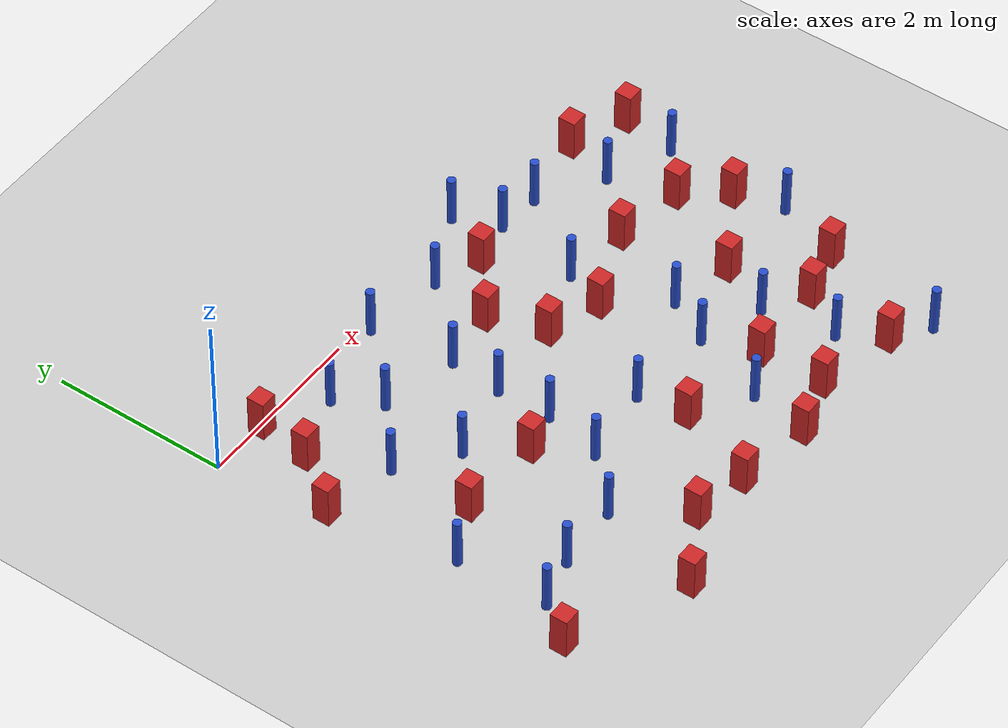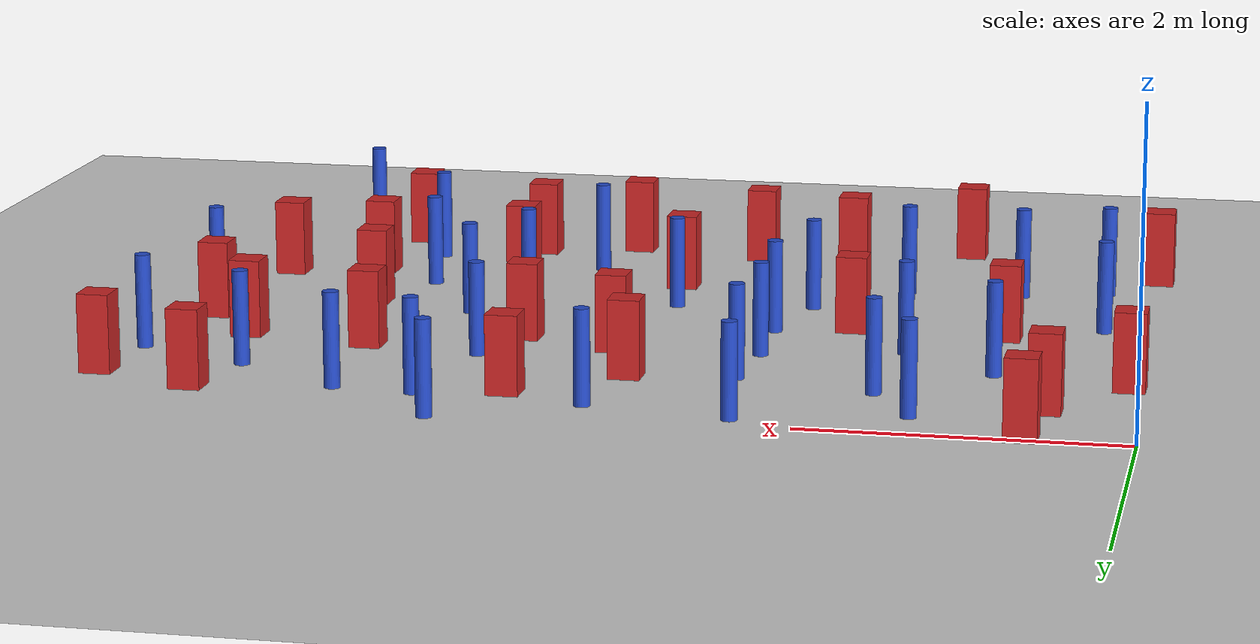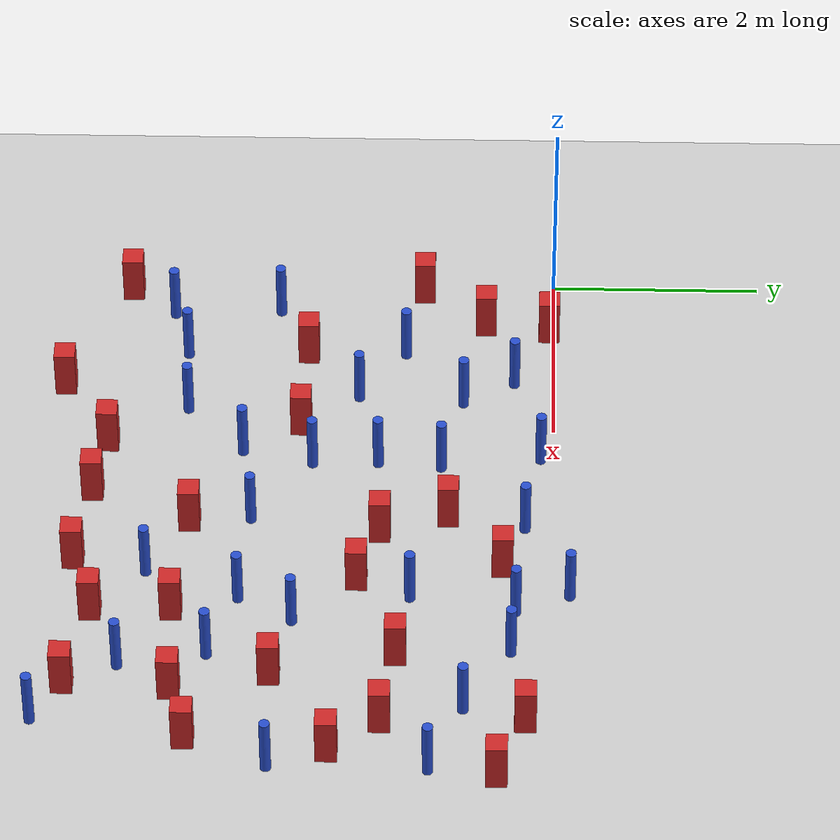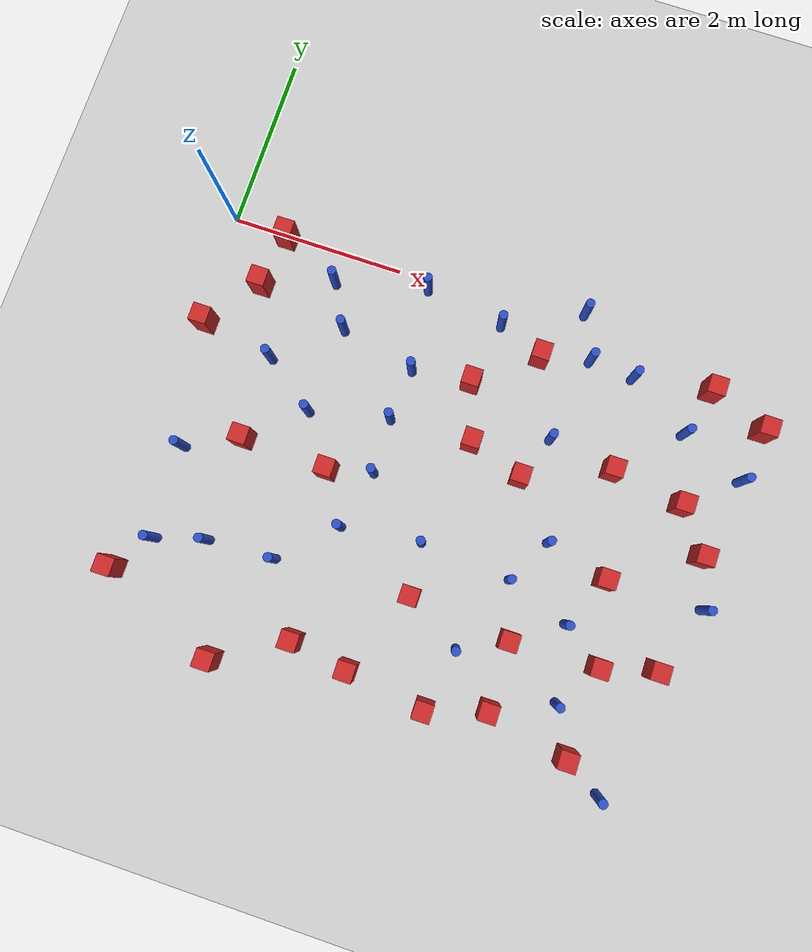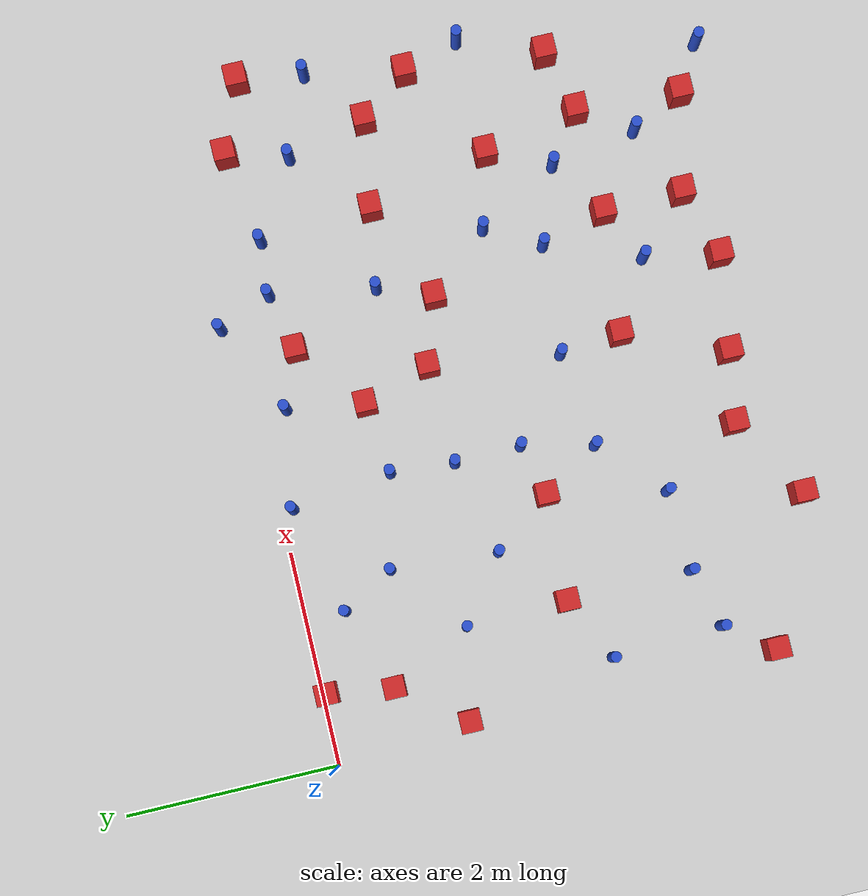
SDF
<sdf version="1.6">
 <world name="default">
  <model name="ground_plane">
   <static>1</static>
   <link name="link">
    <collision name="collision">
     <geometry><plane><normal>0 0 1</normal><size>100 100</size></plane></geometry>
     <surface><friction><ode><mu>100</mu><mu2>50</mu2></ode></friction></surface>
    </collision>
    <visual name="visual">
     <cast_shadows>0</cast_shadows>
     <geometry><plane><normal>0 0 1</normal><size>100 100</size></plane></geometry>
     <material>
      <ambient>1.0 1.0 1.0 1.0</ambient>
      <diffuse>0.8 0.8 0.8 1.0</diffuse>
      <specular>0.01 0.01 0.01 1.000000</specular>
     </material>
    </visual>
   </link>
  </model>
  <model name="square_post_obstacle3">
   <static>true</static>
   <pose>3.17757316821 -0.992732343111 1.91545236811e-07 -7.35059704564e-06 1.12565212e-07 2.39332434364e-05</pose>
   <link name="link">
    <pose>0 0 0.25 0 -0 0</pose>
    <inertial>
     <mass>100</mass>
     <inertia>
      <ixx>0.166667</ixx>
      <ixy>0</ixy>
      <ixz>0</ixz>
      <iyy>0.166667</iyy>
      <iyz>0</iyz>
      <izz>0.166667</izz>
     </inertia>
    </inertial>
    <collision name="collision"><geometry><box><size>.2 .2 .5</size></box></geometry></collision>
    <visual name="visual">
     <geometry><box><size>.2 .2 .5</size></box></geometry>
     <material>
      <script><name>Gazebo/Red</name><uri>file://media/materials/scripts/gazebo.material</uri></script>
     </material>
    </visual>
   </link>
  </model>
  <model name="square_post_obstacle20">
   <static>true</static>
   <pose>0.128614525104 -4.13212072945 1.91545236811e-07 -7.35059704564e-06 1.12565212e-07 2.39332434364e-05</pose>
   <link name="link">
    <pose>0 0 0.25 0 -0 0</pose>
    <inertial>
     <mass>100</mass>
     <inertia>
      <ixx>0.166667</ixx>
      <ixy>0</ixy>
      <ixz>0</ixz>
      <iyy>0.166667</iyy>
      <iyz>0</iyz>
      <izz>0.166667</izz>
     </inertia>
    </inertial>
    <collision name="collision"><geometry><box><size>.2 .2 .5</size></box></geometry></collision>
    <visual name="visual">
     <geometry><box><size>.2 .2 .5</size></box></geometry>
     <material>
      <script><name>Gazebo/Red</name><uri>file://media/materials/scripts/gazebo.material</uri></script>
     </material>
    </visual>
   </link>
  </model>
  <model name="square_post_obstacle28">
   <static>true</static>
   <pose>4.00852546184 -1.83447669162 1.91545236811e-07 -7.35059704564e-06 1.12565212e-07 2.39332434364e-05</pose>
   <link name="link">
    <pose>0 0 0.25 0 -0 0</pose>
    <inertial>
     <mass>100</mass>
     <inertia>
      <ixx>0.166667</ixx>
      <ixy>0</ixy>
      <ixz>0</ixz>
      <iyy>0.166667</iyy>
      <iyz>0</iyz>
      <izz>0.166667</izz>
     </inertia>
    </inertial>
    <collision name="collision"><geometry><box><size>.2 .2 .5</size></box></geometry></collision>
    <visual name="visual">
     <geometry><box><size>.2 .2 .5</size></box></geometry>
     <material>
      <script><name>Gazebo/Red</name><uri>file://media/materials/scripts/gazebo.material</uri></script>
     </material>
    </visual>
   </link>
  </model>
  <model name="square_post_obstacle30">
   <static>true</static>
   <pose>3.2776188841 -3.42509509215 1.91545236811e-07 -7.35059704564e-06 1.12565212e-07 2.39332434364e-05</pose>
   <link name="link">
    <pose>0 0 0.25 0 -0 0</pose>
    <inertial>
     <mass>100</mass>
     <inertia>
      <ixx>0.166667</ixx>
      <ixy>0</ixy>
      <ixz>0</ixz>
      <iyy>0.166667</iyy>
      <iyz>0</iyz>
      <izz>0.166667</izz>
     </inertia>
    </inertial>
    <collision name="collision"><geometry><box><size>.2 .2 .5</size></box></geometry></collision>
    <visual name="visual">
     <geometry><box><size>.2 .2 .5</size></box></geometry>
     <material>
      <script><name>Gazebo/Red</name><uri>file://media/materials/scripts/gazebo.material</uri></script>
     </material>
    </visual>
   </link>
  </model>
  <model name="pole_obstacle28">
   <static>true</static>
   <pose>4.87357572066 -0.389008435116 7.38925637345e-09 -8.47170692798e-08 1.24976765003e-08 -1.7451309302e-07</pose>
   <link name="link">
    <pose>0 0 0.3 0 -0 0</pose>
    <inertial>
     <mass>1</mass>
     <inertia><ixx>0.145833</ixx><ixy>0</ixy><ixz>0</ixz><iyy>0.145833</iyy><iyz>0</iyz><izz>0.125</izz></inertia>
    </inertial>
    <collision name="collision">
     <geometry><cylinder><radius>0.05</radius><length>.6</length></cylinder></geometry>
    </collision>
    <visual name="visual">
     <geometry><cylinder><radius>0.05</radius><length>.6</length></cylinder></geometry>
     <material>
      <script><name>Gazebo/Blue</name><uri>file://media/materials/scripts/gazebo.material</uri></script>
     </material>
    </visual>
   </link>
  </model>
  <model name="square_post_obstacle35">
   <static>true</static>
   <pose>5.99735087613 -3.34948601137 1.91545236811e-07 -7.35059704564e-06 1.12565212e-07 2.39332434364e-05</pose>
   <link name="link">
    <pose>0 0 0.25 0 -0 0</pose>
    <inertial>
     <mass>100</mass>
     <inertia>
      <ixx>0.166667</ixx>
      <ixy>0</ixy>
      <ixz>0</ixz>
      <iyy>0.166667</iyy>
      <iyz>0</iyz>
      <izz>0.166667</izz>
     </inertia>
    </inertial>
    <collision name="collision"><geometry><box><size>.2 .2 .5</size></box></geometry></collision>
    <visual name="visual">
     <geometry><box><size>.2 .2 .5</size></box></geometry>
     <material>
      <script><name>Gazebo/Red</name><uri>file://media/materials/scripts/gazebo.material</uri></script>
     </material>
    </visual>
   </link>
  </model>
  <model name="pole_obstacle39">
   <static>true</static>
   <pose>1.36050679124 -0.379077380872 7.38925637345e-09 -8.47170692799e-08 1.24976765065e-08 -1.74513093017e-07</pose>
   <link name="link">
    <pose>0 0 0.3 0 -0 0</pose>
    <inertial>
     <mass>1</mass>
     <inertia><ixx>0.145833</ixx><ixy>0</ixy><ixz>0</ixz><iyy>0.145833</iyy><iyz>0</iyz><izz>0.125</izz></inertia>
    </inertial>
    <collision name="collision">
     <geometry><cylinder><radius>0.05</radius><length>.6</length></cylinder></geometry>
    </collision>
    <visual name="visual">
     <geometry><cylinder><radius>0.05</radius><length>.6</length></cylinder></geometry>
     <material>
      <script><name>Gazebo/Blue</name><uri>file://media/materials/scripts/gazebo.material</uri></script>
     </material>
    </visual>
   </link>
  </model>
  <model name="pole_obstacle43">
   <static>true</static>
   <pose>1.56838696874 -1.871948679 7.38925637345e-09 -8.471706928e-08 1.24976765079e-08 -1.74513093017e-07</pose>
   <link name="link">
    <pose>0 0 0.3 0 -0 0</pose>
    <inertial>
     <mass>1</mass>
     <inertia><ixx>0.145833</ixx><ixy>0</ixy><ixz>0</ixz><iyy>0.145833</iyy><iyz>0</iyz><izz>0.125</izz></inertia>
    </inertial>
    <collision name="collision">
     <geometry><cylinder><radius>0.05</radius><length>.6</length></cylinder></geometry>
    </collision>
    <visual name="visual">
     <geometry><cylinder><radius>0.05</radius><length>.6</length></cylinder></geometry>
     <material>
      <script><name>Gazebo/Blue</name><uri>file://media/materials/scripts/gazebo.material</uri></script>
     </material>
    </visual>
   </link>
  </model>
  <model name="square_post_obstacle46">
   <static>true</static>
   <pose>4.41838966597 -3.54032860259 1.91545236811e-07 -7.35059704564e-06 1.12565212e-07 2.39332434364e-05</pose>
   <link name="link">
    <pose>0 0 0.25 0 -0 0</pose>
    <inertial>
     <mass>100</mass>
     <inertia>
      <ixx>0.166667</ixx>
      <ixy>0</ixy>
      <ixz>0</ixz>
      <iyy>0.166667</iyy>
      <iyz>0</iyz>
      <izz>0.166667</izz>
     </inertia>
    </inertial>
    <collision name="collision"><geometry><box><size>.2 .2 .5</size></box></geometry></collision>
    <visual name="visual">
     <geometry><box><size>.2 .2 .5</size></box></geometry>
     <material>
      <script><name>Gazebo/Red</name><uri>file://media/materials/scripts/gazebo.material</uri></script>
     </material>
    </visual>
   </link>
  </model>
  <model name="pole_obstacle46">
   <static>true</static>
   <pose>1.00060790037 -3.54906741801 7.38925637345e-09 -8.471706928e-08 1.2497676505e-08 -1.74513093017e-07</pose>
   <link name="link">
    <pose>0 0 0.3 0 -0 0</pose>
    <inertial>
     <mass>1</mass>
     <inertia><ixx>0.145833</ixx><ixy>0</ixy><ixz>0</ixz><iyy>0.145833</iyy><iyz>0</iyz><izz>0.125</izz></inertia>
    </inertial>
    <collision name="collision">
     <geometry><cylinder><radius>0.05</radius><length>.6</length></cylinder></geometry>
    </collision>
    <visual name="visual">
     <geometry><cylinder><radius>0.05</radius><length>.6</length></cylinder></geometry>
     <material>
      <script><name>Gazebo/Blue</name><uri>file://media/materials/scripts/gazebo.material</uri></script>
     </material>
    </visual>
   </link>
  </model>
  <model name="pole_obstacle49">
   <static>true</static>
   <pose>3.29734122619 -0.266128705085 7.38925637345e-09 -8.47170692793e-08 1.24976764479e-08 -1.74513093039e-07</pose>
   <link name="link">
    <pose>0 0 0.3 0 -0 0</pose>
    <inertial>
     <mass>1</mass>
     <inertia><ixx>0.145833</ixx><ixy>0</ixy><ixz>0</ixz><iyy>0.145833</iyy><iyz>0</iyz><izz>0.125</izz></inertia>
    </inertial>
    <collision name="collision">
     <geometry><cylinder><radius>0.05</radius><length>.6</length></cylinder></geometry>
    </collision>
    <visual name="visual">
     <geometry><cylinder><radius>0.05</radius><length>.6</length></cylinder></geometry>
     <material>
      <script><name>Gazebo/Blue</name><uri>file://media/materials/scripts/gazebo.material</uri></script>
     </material>
    </visual>
   </link>
  </model>
  <model name="pole_obstacle55">
   <static>true</static>
   <pose>4.23992459268 -2.92920533797 7.38925637345e-09 -8.47170692798e-08 1.24976764937e-08 -1.74513093023e-07</pose>
   <link name="link">
    <pose>0 0 0.3 0 -0 0</pose>
    <inertial>
     <mass>1</mass>
     <inertia><ixx>0.145833</ixx><ixy>0</ixy><ixz>0</ixz><iyy>0.145833</iyy><iyz>0</iyz><izz>0.125</izz></inertia>
    </inertial>
    <collision name="collision">
     <geometry><cylinder><radius>0.05</radius><length>.6</length></cylinder></geometry>
    </collision>
    <visual name="visual">
     <geometry><cylinder><radius>0.05</radius><length>.6</length></cylinder></geometry>
     <material>
      <script><name>Gazebo/Blue</name><uri>file://media/materials/scripts/gazebo.material</uri></script>
     </material>
    </visual>
   </link>
  </model>
  <model name="pole_obstacle56">
   <static>true</static>
   <pose>5.09615905347 -4.00248910302 7.38925637345e-09 -8.47170692796e-08 1.24976764791e-08 -1.74513093031e-07</pose>
   <link name="link">
    <pose>0 0 0.3 0 -0 0</pose>
    <inertial>
     <mass>1</mass>
     <inertia><ixx>0.145833</ixx><ixy>0</ixy><ixz>0</ixz><iyy>0.145833</iyy><iyz>0</iyz><izz>0.125</izz></inertia>
    </inertial>
    <collision name="collision">
     <geometry><cylinder><radius>0.05</radius><length>.6</length></cylinder></geometry>
    </collision>
    <visual name="visual">
     <geometry><cylinder><radius>0.05</radius><length>.6</length></cylinder></geometry>
     <material>
      <script><name>Gazebo/Blue</name><uri>file://media/materials/scripts/gazebo.material</uri></script>
     </material>
    </visual>
   </link>
  </model>
  <model name="pole_obstacle60">
   <static>true</static>
   <pose>2.32214573465 -2.96264212233 7.38925637345e-09 -8.47170692798e-08 1.24976764939e-08 -1.74513093025e-07</pose>
   <link name="link">
    <pose>0 0 0.3 0 -0 0</pose>
    <inertial>
     <mass>1</mass>
     <inertia><ixx>0.145833</ixx><ixy>0</ixy><ixz>0</ixz><iyy>0.145833</iyy><iyz>0</iyz><izz>0.125</izz></inertia>
    </inertial>
    <collision name="collision">
     <geometry><cylinder><radius>0.05</radius><length>.6</length></cylinder></geometry>
    </collision>
    <visual name="visual">
     <geometry><cylinder><radius>0.05</radius><length>.6</length></cylinder></geometry>
     <material>
      <script><name>Gazebo/Blue</name><uri>file://media/materials/scripts/gazebo.material</uri></script>
     </material>
    </visual>
   </link>
  </model>
  <model name="square_post_obstacle64">
   <static>true</static>
   <pose>0.126312547041 -1.2643421122 1.91545236811e-07 -7.35059704564e-06 1.12565212e-07 2.39332434364e-05</pose>
   <link name="link">
    <pose>0 0 0.25 0 -0 0</pose>
    <inertial>
     <mass>100</mass>
     <inertia>
      <ixx>0.166667</ixx>
      <ixy>0</ixy>
      <ixz>0</ixz>
      <iyy>0.166667</iyy>
      <iyz>0</iyz>
      <izz>0.166667</izz>
     </inertia>
    </inertial>
    <collision name="collision"><geometry><box><size>.2 .2 .5</size></box></geometry></collision>
    <visual name="visual">
     <geometry><box><size>.2 .2 .5</size></box></geometry>
     <material>
      <script><name>Gazebo/Red</name><uri>file://media/materials/scripts/gazebo.material</uri></script>
     </material>
    </visual>
   </link>
  </model>
  <model name="square_post_obstacle66">
   <static>true</static>
   <pose>4.43077203972 -4.28993269873 1.91545236811e-07 -7.35059704564e-06 1.12565212e-07 2.39332434364e-05</pose>
   <link name="link">
    <pose>0 0 0.25 0 -0 0</pose>
    <inertial>
     <mass>100</mass>
     <inertia>
      <ixx>0.166667</ixx>
      <ixy>0</ixy>
      <ixz>0</ixz>
      <iyy>0.166667</iyy>
      <iyz>0</iyz>
      <izz>0.166667</izz>
     </inertia>
    </inertial>
    <collision name="collision"><geometry><box><size>.2 .2 .5</size></box></geometry></collision>
    <visual name="visual">
     <geometry><box><size>.2 .2 .5</size></box></geometry>
     <material>
      <script><name>Gazebo/Red</name><uri>file://media/materials/scripts/gazebo.material</uri></script>
     </material>
    </visual>
   </link>
  </model>
  <model name="square_post_obstacle67">
   <static>true</static>
   <pose>0.58167557484 -0.661156891549 1.91545236811e-07 -7.35059704564e-06 1.12565212e-07 2.39332434364e-05</pose>
   <link name="link">
    <pose>0 0 0.25 0 -0 0</pose>
    <inertial>
     <mass>100</mass>
     <inertia>
      <ixx>0.166667</ixx>
      <ixy>0</ixy>
      <ixz>0</ixz>
      <iyy>0.166667</iyy>
      <iyz>0</iyz>
      <izz>0.166667</izz>
     </inertia>
    </inertial>
    <collision name="collision"><geometry><box><size>.2 .2 .5</size></box></geometry></collision>
    <visual name="visual">
     <geometry><box><size>.2 .2 .5</size></box></geometry>
     <material>
      <script><name>Gazebo/Red</name><uri>file://media/materials/scripts/gazebo.material</uri></script>
     </material>
    </visual>
   </link>
  </model>
  <model name="square_post_obstacle68">
   <static>true</static>
   <pose>5.74025711703 -0.251943109401 1.91545236811e-07 -7.35059704564e-06 1.12565212e-07 2.39332434364e-05</pose>
   <link name="link">
    <pose>0 0 0.25 0 -0 0</pose>
    <inertial>
     <mass>100</mass>
     <inertia>
      <ixx>0.166667</ixx>
      <ixy>0</ixy>
      <ixz>0</ixz>
      <iyy>0.166667</iyy>
      <iyz>0</iyz>
      <izz>0.166667</izz>
     </inertia>
    </inertial>
    <collision name="collision"><geometry><box><size>.2 .2 .5</size></box></geometry></collision>
    <visual name="visual">
     <geometry><box><size>.2 .2 .5</size></box></geometry>
     <material>
      <script><name>Gazebo/Red</name><uri>file://media/materials/scripts/gazebo.material</uri></script>
     </material>
    </visual>
   </link>
  </model>
  <model name="pole_obstacle66">
   <static>true</static>
   <pose>4.51611593924 -2.4207088653 7.38925637345e-09 -8.47170692798e-08 1.24976764937e-08 -1.74513093023e-07</pose>
   <link name="link">
    <pose>0 0 0.3 0 -0 0</pose>
    <inertial>
     <mass>1</mass>
     <inertia><ixx>0.145833</ixx><ixy>0</ixy><ixz>0</ixz><iyy>0.145833</iyy><iyz>0</iyz><izz>0.125</izz></inertia>
    </inertial>
    <collision name="collision">
     <geometry><cylinder><radius>0.05</radius><length>.6</length></cylinder></geometry>
    </collision>
    <visual name="visual">
     <geometry><cylinder><radius>0.05</radius><length>.6</length></cylinder></geometry>
     <material>
      <script><name>Gazebo/Blue</name><uri>file://media/materials/scripts/gazebo.material</uri></script>
     </material>
    </visual>
   </link>
  </model>
  <model name="square_post_obstacle71">
   <static>true</static>
   <pose>6.12546511379 -2.04625613774 1.91545236811e-07 -7.35059704564e-06 1.12565212e-07 2.39332434364e-05</pose>
   <link name="link">
    <pose>0 0 0.25 0 -0 0</pose>
    <inertial>
     <mass>100</mass>
     <inertia>
      <ixx>0.166667</ixx>
      <ixy>0</ixy>
      <ixz>0</ixz>
      <iyy>0.166667</iyy>
      <iyz>0</iyz>
      <izz>0.166667</izz>
     </inertia>
    </inertial>
    <collision name="collision"><geometry><box><size>.2 .2 .5</size></box></geometry></collision>
    <visual name="visual">
     <geometry><box><size>.2 .2 .5</size></box></geometry>
     <material>
      <script><name>Gazebo/Red</name><uri>file://media/materials/scripts/gazebo.material</uri></script>
     </material>
    </visual>
   </link>
  </model>
  <model name="square_post_obstacle77">
   <static>true</static>
   <pose>4.94504913133 -1.44988358491 1.91545236811e-07 -7.35059704564e-06 1.12565212e-07 2.39332434364e-05</pose>
   <link name="link">
    <pose>0 0 0.25 0 -0 0</pose>
    <inertial>
     <mass>100</mass>
     <inertia>
      <ixx>0.166667</ixx>
      <ixy>0</ixy>
      <ixz>0</ixz>
      <iyy>0.166667</iyy>
      <iyz>0</iyz>
      <izz>0.166667</izz>
     </inertia>
    </inertial>
    <collision name="collision"><geometry><box><size>.2 .2 .5</size></box></geometry></collision>
    <visual name="visual">
     <geometry><box><size>.2 .2 .5</size></box></geometry>
     <material>
      <script><name>Gazebo/Red</name><uri>file://media/materials/scripts/gazebo.material</uri></script>
     </material>
    </visual>
   </link>
  </model>
  <model name="square_post_obstacle80">
   <static>true</static>
   <pose>6.39786199909 -0.50927467891 1.91545236811e-07 -7.35059704564e-06 1.12565212e-07 2.39332434364e-05</pose>
   <link name="link">
    <pose>0 0 0.25 0 -0 0</pose>
    <inertial>
     <mass>100</mass>
     <inertia>
      <ixx>0.166667</ixx>
      <ixy>0</ixy>
      <ixz>0</ixz>
      <iyy>0.166667</iyy>
      <iyz>0</iyz>
      <izz>0.166667</izz>
     </inertia>
    </inertial>
    <collision name="collision"><geometry><box><size>.2 .2 .5</size></box></geometry></collision>
    <visual name="visual">
     <geometry><box><size>.2 .2 .5</size></box></geometry>
     <material>
      <script><name>Gazebo/Red</name><uri>file://media/materials/scripts/gazebo.material</uri></script>
     </material>
    </visual>
   </link>
  </model>
  <model name="square_post_obstacle82">
   <static>true</static>
   <pose>2.2329230916 -4.25549795087 1.91545236811e-07 -7.35059704564e-06 1.12565212e-07 2.39332434364e-05</pose>
   <link name="link">
    <pose>0 0 0.25 0 -0 0</pose>
    <inertial>
     <mass>100</mass>
     <inertia>
      <ixx>0.166667</ixx>
      <ixy>0</ixy>
      <ixz>0</ixz>
      <iyy>0.166667</iyy>
      <iyz>0</iyz>
      <izz>0.166667</izz>
     </inertia>
    </inertial>
    <collision name="collision"><geometry><box><size>.2 .2 .5</size></box></geometry></collision>
    <visual name="visual">
     <geometry><box><size>.2 .2 .5</size></box></geometry>
     <material>
      <script><name>Gazebo/Red</name><uri>file://media/materials/scripts/gazebo.material</uri></script>
     </material>
    </visual>
   </link>
  </model>
  <model name="square_post_obstacle84">
   <static>true</static>
   <pose>5.20859626616 -2.60363302183 1.91545236811e-07 -7.35059704564e-06 1.12565212e-07 2.39332434364e-05</pose>
   <link name="link">
    <pose>0 0 0.25 0 -0 0</pose>
    <inertial>
     <mass>100</mass>
     <inertia>
      <ixx>0.166667</ixx>
      <ixy>0</ixy>
      <ixz>0</ixz>
      <iyy>0.166667</iyy>
      <iyz>0</iyz>
      <izz>0.166667</izz>
     </inertia>
    </inertial>
    <collision name="collision"><geometry><box><size>.2 .2 .5</size></box></geometry></collision>
    <visual name="visual">
     <geometry><box><size>.2 .2 .5</size></box></geometry>
     <material>
      <script><name>Gazebo/Red</name><uri>file://media/materials/scripts/gazebo.material</uri></script>
     </material>
    </visual>
   </link>
  </model>
  <model name="pole_obstacle98">
   <static>true</static>
   <pose>3.21463210178 -2.85027011725 7.38925637345e-09 -8.47170692798e-08 1.24976764939e-08 -1.74513093025e-07</pose>
   <link name="link">
    <pose>0 0 0.3 0 -0 0</pose>
    <inertial>
     <mass>1</mass>
     <inertia><ixx>0.145833</ixx><ixy>0</ixy><ixz>0</ixz><iyy>0.145833</iyy><iyz>0</iyz><izz>0.125</izz></inertia>
    </inertial>
    <collision name="collision">
     <geometry><cylinder><radius>0.05</radius><length>.6</length></cylinder></geometry>
    </collision>
    <visual name="visual">
     <geometry><cylinder><radius>0.05</radius><length>.6</length></cylinder></geometry>
     <material>
      <script><name>Gazebo/Blue</name><uri>file://media/materials/scripts/gazebo.material</uri></script>
     </material>
    </visual>
   </link>
  </model>
  <model name="pole_obstacle103">
   <static>true</static>
   <pose>2.38419229638 -0.122399489346 7.38925637345e-09 -8.471706928e-08 1.2497676511e-08 -1.74513093016e-07</pose>
   <link name="link">
    <pose>0 0 0.3 0 -0 0</pose>
    <inertial>
     <mass>1</mass>
     <inertia><ixx>0.145833</ixx><ixy>0</ixy><ixz>0</ixz><iyy>0.145833</iyy><iyz>0</iyz><izz>0.125</izz></inertia>
    </inertial>
    <collision name="collision">
     <geometry><cylinder><radius>0.05</radius><length>.6</length></cylinder></geometry>
    </collision>
    <visual name="visual">
     <geometry><cylinder><radius>0.05</radius><length>.6</length></cylinder></geometry>
     <material>
      <script><name>Gazebo/Blue</name><uri>file://media/materials/scripts/gazebo.material</uri></script>
     </material>
    </visual>
   </link>
  </model>
  <model name="square_post_obstacle102">
   <static>true</static>
   <pose>0.991768432737 -2.3771882432 1.91545236811e-07 -7.35059704564e-06 1.12565212e-07 2.39332434364e-05</pose>
   <link name="link">
    <pose>0 0 0.25 0 -0 0</pose>
    <inertial>
     <mass>100</mass>
     <inertia>
      <ixx>0.166667</ixx>
      <ixy>0</ixy>
      <ixz>0</ixz>
      <iyy>0.166667</iyy>
      <iyz>0</iyz>
      <izz>0.166667</izz>
     </inertia>
    </inertial>
    <collision name="collision"><geometry><box><size>.2 .2 .5</size></box></geometry></collision>
    <visual name="visual">
     <geometry><box><size>.2 .2 .5</size></box></geometry>
     <material>
      <script><name>Gazebo/Red</name><uri>file://media/materials/scripts/gazebo.material</uri></script>
     </material>
    </visual>
   </link>
  </model>
  <model name="pole_obstacle130">
   <static>true</static>
   <pose>4.15730157851 0.154536090212 7.38925637345e-09 -8.47170692801e-08 1.24976765186e-08 -1.74513093012e-07</pose>
   <link name="link">
    <pose>0 0 0.3 0 -0 0</pose>
    <inertial>
     <mass>1</mass>
     <inertia><ixx>0.145833</ixx><ixy>0</ixy><ixz>0</ixz><iyy>0.145833</iyy><iyz>0</iyz><izz>0.125</izz></inertia>
    </inertial>
    <collision name="collision">
     <geometry><cylinder><radius>0.05</radius><length>.6</length></cylinder></geometry>
    </collision>
    <visual name="visual">
     <geometry><cylinder><radius>0.05</radius><length>.6</length></cylinder></geometry>
     <material>
      <script><name>Gazebo/Blue</name><uri>file://media/materials/scripts/gazebo.material</uri></script>
     </material>
    </visual>
   </link>
  </model>
  <model name="square_post_obstacle132">
   <static>true</static>
   <pose>0.663776499198 -0.0467178070828 1.91545236811e-07 -7.35059704564e-06 1.12565212e-07 2.39332434364e-05</pose>
   <link name="link">
    <pose>0 0 0.25 0 -0 0</pose>
    <inertial>
     <mass>100</mass>
     <inertia>
      <ixx>0.166667</ixx>
      <ixy>0</ixy>
      <ixz>0</ixz>
      <iyy>0.166667</iyy>
      <iyz>0</iyz>
      <izz>0.166667</izz>
     </inertia>
    </inertial>
    <collision name="collision"><geometry><box><size>.2 .2 .5</size></box></geometry></collision>
    <visual name="visual">
     <geometry><box><size>.2 .2 .5</size></box></geometry>
     <material>
      <script><name>Gazebo/Red</name><uri>file://media/materials/scripts/gazebo.material</uri></script>
     </material>
    </visual>
   </link>
  </model>
  <model name="square_post_obstacle134">
   <static>true</static>
   <pose>1.4633358679 -4.71006735573 1.91545236811e-07 -7.35059704564e-06 1.12565212e-07 2.39332434364e-05</pose>
   <link name="link">
    <pose>0 0 0.25 0 -0 0</pose>
    <inertial>
     <mass>100</mass>
     <inertia>
      <ixx>0.166667</ixx>
      <ixy>0</ixy>
      <ixz>0</ixz>
      <iyy>0.166667</iyy>
      <iyz>0</iyz>
      <izz>0.166667</izz>
     </inertia>
    </inertial>
    <collision name="collision"><geometry><box><size>.2 .2 .5</size></box></geometry></collision>
    <visual name="visual">
     <geometry><box><size>.2 .2 .5</size></box></geometry>
     <material>
      <script><name>Gazebo/Red</name><uri>file://media/materials/scripts/gazebo.material</uri></script>
     </material>
    </visual>
   </link>
  </model>
  <model name="square_post_obstacle136">
   <static>true</static>
   <pose>3.81821326336 -0.47520743652 1.91545236811e-07 -7.35059704564e-06 1.12565212e-07 2.39332434364e-05</pose>
   <link name="link">
    <pose>0 0 0.25 0 -0 0</pose>
    <inertial>
     <mass>100</mass>
     <inertia>
      <ixx>0.166667</ixx>
      <ixy>0</ixy>
      <ixz>0</ixz>
      <iyy>0.166667</iyy>
      <iyz>0</iyz>
      <izz>0.166667</izz>
     </inertia>
    </inertial>
    <collision name="collision"><geometry><box><size>.2 .2 .5</size></box></geometry></collision>
    <visual name="visual">
     <geometry><box><size>.2 .2 .5</size></box></geometry>
     <material>
      <script><name>Gazebo/Red</name><uri>file://media/materials/scripts/gazebo.material</uri></script>
     </material>
    </visual>
   </link>
  </model>
  <model name="square_post_obstacle149">
   <static>true</static>
   <pose>3.39007895652 -1.6310419844 1.91545236811e-07 -7.35059704564e-06 1.12565212e-07 2.39332434364e-05</pose>
   <link name="link">
    <pose>0 0 0.25 0 -0 0</pose>
    <inertial>
     <mass>100</mass>
     <inertia>
      <ixx>0.166667</ixx>
      <ixy>0</ixy>
      <ixz>0</ixz>
      <iyy>0.166667</iyy>
      <iyz>0</iyz>
      <izz>0.166667</izz>
     </inertia>
    </inertial>
    <collision name="collision"><geometry><box><size>.2 .2 .5</size></box></geometry></collision>
    <visual name="visual">
     <geometry><box><size>.2 .2 .5</size></box></geometry>
     <material>
      <script><name>Gazebo/Red</name><uri>file://media/materials/scripts/gazebo.material</uri></script>
     </material>
    </visual>
   </link>
  </model>
  <model name="pole_obstacle159">
   <static>true</static>
   <pose>6.31490951135 -1.12787084136 7.38925637345e-09 -8.471706928e-08 1.24976765134e-08 -1.74513093015e-07</pose>
   <link name="link">
    <pose>0 0 0.3 0 -0 0</pose>
    <inertial>
     <mass>1</mass>
     <inertia><ixx>0.145833</ixx><ixy>0</ixy><ixz>0</ixz><iyy>0.145833</iyy><iyz>0</iyz><izz>0.125</izz></inertia>
    </inertial>
    <collision name="collision">
     <geometry><cylinder><radius>0.05</radius><length>.6</length></cylinder></geometry>
    </collision>
    <visual name="visual">
     <geometry><cylinder><radius>0.05</radius><length>.6</length></cylinder></geometry>
     <material>
      <script><name>Gazebo/Blue</name><uri>file://media/materials/scripts/gazebo.material</uri></script>
     </material>
    </visual>
   </link>
  </model>
  <model name="pole_obstacle167">
   <static>true</static>
   <pose>6.301875055 -2.58620812077 7.38925637345e-09 -8.47170692798e-08 1.24976764937e-08 -1.74513093023e-07</pose>
   <link name="link">
    <pose>0 0 0.3 0 -0 0</pose>
    <inertial>
     <mass>1</mass>
     <inertia><ixx>0.145833</ixx><ixy>0</ixy><ixz>0</ixz><iyy>0.145833</iyy><iyz>0</iyz><izz>0.125</izz></inertia>
    </inertial>
    <collision name="collision">
     <geometry><cylinder><radius>0.05</radius><length>.6</length></cylinder></geometry>
    </collision>
    <visual name="visual">
     <geometry><cylinder><radius>0.05</radius><length>.6</length></cylinder></geometry>
     <material>
      <script><name>Gazebo/Blue</name><uri>file://media/materials/scripts/gazebo.material</uri></script>
     </material>
    </visual>
   </link>
  </model>
  <model name="pole_obstacle168">
   <static>true</static>
   <pose>1.63491833567 -0.868225210622 7.38925637345e-09 -8.47170692799e-08 1.24976765075e-08 -1.74513093017e-07</pose>
   <link name="link">
    <pose>0 0 0.3 0 -0 0</pose>
    <inertial>
     <mass>1</mass>
     <inertia><ixx>0.145833</ixx><ixy>0</ixy><ixz>0</ixz><iyy>0.145833</iyy><iyz>0</iyz><izz>0.125</izz></inertia>
    </inertial>
    <collision name="collision">
     <geometry><cylinder><radius>0.05</radius><length>.6</length></cylinder></geometry>
    </collision>
    <visual name="visual">
     <geometry><cylinder><radius>0.05</radius><length>.6</length></cylinder></geometry>
     <material>
      <script><name>Gazebo/Blue</name><uri>file://media/materials/scripts/gazebo.material</uri></script>
     </material>
    </visual>
   </link>
  </model>
  <model name="pole_obstacle169">
   <static>true</static>
   <pose>2.47197559452 -2.2942607776 7.38925637345e-09 -8.47170692798e-08 1.24976764939e-08 -1.74513093025e-07</pose>
   <link name="link">
    <pose>0 0 0.3 0 -0 0</pose>
    <inertial>
     <mass>1</mass>
     <inertia><ixx>0.145833</ixx><ixy>0</ixy><ixz>0</ixz><iyy>0.145833</iyy><iyz>0</iyz><izz>0.125</izz></inertia>
    </inertial>
    <collision name="collision">
     <geometry><cylinder><radius>0.05</radius><length>.6</length></cylinder></geometry>
    </collision>
    <visual name="visual">
     <geometry><cylinder><radius>0.05</radius><length>.6</length></cylinder></geometry>
     <material>
      <script><name>Gazebo/Blue</name><uri>file://media/materials/scripts/gazebo.material</uri></script>
     </material>
    </visual>
   </link>
  </model>
  <model name="pole_obstacle170">
   <static>true</static>
   <pose>2.45760182328 -1.66992943878 7.38925637345e-09 -8.471706928e-08 1.24976765152e-08 -1.74513093012e-07</pose>
   <link name="link">
    <pose>0 0 0.3 0 -0 0</pose>
    <inertial>
     <mass>1</mass>
     <inertia><ixx>0.145833</ixx><ixy>0</ixy><ixz>0</ixz><iyy>0.145833</iyy><iyz>0</iyz><izz>0.125</izz></inertia>
    </inertial>
    <collision name="collision">
     <geometry><cylinder><radius>0.05</radius><length>.6</length></cylinder></geometry>
    </collision>
    <visual name="visual">
     <geometry><cylinder><radius>0.05</radius><length>.6</length></cylinder></geometry>
     <material>
      <script><name>Gazebo/Blue</name><uri>file://media/materials/scripts/gazebo.material</uri></script>
     </material>
    </visual>
   </link>
  </model>
  <model name="pole_obstacle171">
   <static>true</static>
   <pose>0.388610533585 -2.67049463988 7.38925637345e-09 -8.471706928e-08 1.24976765084e-08 -1.74513093017e-07</pose>
   <link name="link">
    <pose>0 0 0.3 0 -0 0</pose>
    <inertial>
     <mass>1</mass>
     <inertia><ixx>0.145833</ixx><ixy>0</ixy><ixz>0</ixz><iyy>0.145833</iyy><iyz>0</iyz><izz>0.125</izz></inertia>
    </inertial>
    <collision name="collision">
     <geometry><cylinder><radius>0.05</radius><length>.6</length></cylinder></geometry>
    </collision>
    <visual name="visual">
     <geometry><cylinder><radius>0.05</radius><length>.6</length></cylinder></geometry>
     <material>
      <script><name>Gazebo/Blue</name><uri>file://media/materials/scripts/gazebo.material</uri></script>
     </material>
    </visual>
   </link>
  </model>
  <model name="pole_obstacle172">
   <static>true</static>
   <pose>3.91648277376 -3.80381438016 7.38925637345e-09 -8.47170692798e-08 1.24976764939e-08 -1.74513093025e-07</pose>
   <link name="link">
    <pose>0 0 0.3 0 -0 0</pose>
    <inertial>
     <mass>1</mass>
     <inertia><ixx>0.145833</ixx><ixy>0</ixy><ixz>0</ixz><iyy>0.145833</iyy><iyz>0</iyz><izz>0.125</izz></inertia>
    </inertial>
    <collision name="collision">
     <geometry><cylinder><radius>0.05</radius><length>.6</length></cylinder></geometry>
    </collision>
    <visual name="visual">
     <geometry><cylinder><radius>0.05</radius><length>.6</length></cylinder></geometry>
     <material>
      <script><name>Gazebo/Blue</name><uri>file://media/materials/scripts/gazebo.material</uri></script>
     </material>
    </visual>
   </link>
  </model>
  <model name="pole_obstacle174">
   <static>true</static>
   <pose>5.57934269184 -0.821234364204 7.38925637345e-09 -8.47170692799e-08 1.24976765038e-08 -1.74513093018e-07</pose>
   <link name="link">
    <pose>0 0 0.3 0 -0 0</pose>
    <inertial>
     <mass>1</mass>
     <inertia><ixx>0.145833</ixx><ixy>0</ixy><ixz>0</ixz><iyy>0.145833</iyy><iyz>0</iyz><izz>0.125</izz></inertia>
    </inertial>
    <collision name="collision">
     <geometry><cylinder><radius>0.05</radius><length>.6</length></cylinder></geometry>
    </collision>
    <visual name="visual">
     <geometry><cylinder><radius>0.05</radius><length>.6</length></cylinder></geometry>
     <material>
      <script><name>Gazebo/Blue</name><uri>file://media/materials/scripts/gazebo.material</uri></script>
     </material>
    </visual>
   </link>
  </model>
  <model name="square_post_obstacle168">
   <static>true</static>
   <pose>1.98160671528 -2.41901242821 1.91545236811e-07 -7.35059704564e-06 1.12565212e-07 2.39332434364e-05</pose>
   <link name="link">
    <pose>0 0 0.25 0 -0 0</pose>
    <inertial>
     <mass>100</mass>
     <inertia>
      <ixx>0.166667</ixx>
      <ixy>0</ixy>
      <ixz>0</ixz>
      <iyy>0.166667</iyy>
      <iyz>0</iyz>
      <izz>0.166667</izz>
     </inertia>
    </inertial>
    <collision name="collision"><geometry><box><size>.2 .2 .5</size></box></geometry></collision>
    <visual name="visual">
     <geometry><box><size>.2 .2 .5</size></box></geometry>
     <material>
      <script><name>Gazebo/Red</name><uri>file://media/materials/scripts/gazebo.material</uri></script>
     </material>
    </visual>
   </link>
  </model>
  <model name="pole_obstacle180">
   <static>true</static>
   <pose>4.36473115161 -0.349015475536 7.38925637345e-09 -8.47170692798e-08 1.24976765003e-08 -1.7451309302e-07</pose>
   <link name="link">
    <pose>0 0 0.3 0 -0 0</pose>
    <inertial>
     <mass>1</mass>
     <inertia><ixx>0.145833</ixx><ixy>0</ixy><ixz>0</ixz><iyy>0.145833</iyy><iyz>0</iyz><izz>0.125</izz></inertia>
    </inertial>
    <collision name="collision">
     <geometry><cylinder><radius>0.05</radius><length>.6</length></cylinder></geometry>
    </collision>
    <visual name="visual">
     <geometry><cylinder><radius>0.05</radius><length>.6</length></cylinder></geometry>
     <material>
      <script><name>Gazebo/Blue</name><uri>file://media/materials/scripts/gazebo.material</uri></script>
     </material>
    </visual>
   </link>
  </model>
  <model name="square_post_obstacle180">
   <static>true</static>
   <pose>5.39986272667 -3.50849131669 1.91545236811e-07 -7.35059704564e-06 1.12565212e-07 2.39332434364e-05</pose>
   <link name="link">
    <pose>0 0 0.25 0 -0 0</pose>
    <inertial>
     <mass>100</mass>
     <inertia>
      <ixx>0.166667</ixx>
      <ixy>0</ixy>
      <ixz>0</ixz>
      <iyy>0.166667</iyy>
      <iyz>0</iyz>
      <izz>0.166667</izz>
     </inertia>
    </inertial>
    <collision name="collision"><geometry><box><size>.2 .2 .5</size></box></geometry></collision>
    <visual name="visual">
     <geometry><box><size>.2 .2 .5</size></box></geometry>
     <material>
      <script><name>Gazebo/Red</name><uri>file://media/materials/scripts/gazebo.material</uri></script>
     </material>
    </visual>
   </link>
  </model>
  <model name="square_post_obstacle188">
   <static>true</static>
   <pose>5.76501660228 -1.57702405886 1.91545236811e-07 -7.35059704564e-06 1.12565212e-07 2.39332434364e-05</pose>
   <link name="link">
    <pose>0 0 0.25 0 -0 0</pose>
    <inertial>
     <mass>100</mass>
     <inertia>
      <ixx>0.166667</ixx>
      <ixy>0</ixy>
      <ixz>0</ixz>
      <iyy>0.166667</iyy>
      <iyz>0</iyz>
      <izz>0.166667</izz>
     </inertia>
    </inertial>
    <collision name="collision"><geometry><box><size>.2 .2 .5</size></box></geometry></collision>
    <visual name="visual">
     <geometry><box><size>.2 .2 .5</size></box></geometry>
     <material>
      <script><name>Gazebo/Red</name><uri>file://media/materials/scripts/gazebo.material</uri></script>
     </material>
    </visual>
   </link>
  </model>
  <model name="square_post_obstacle189">
   <static>true</static>
   <pose>2.88972623467 -4.36265532564 1.91545236811e-07 -7.35059704564e-06 1.12565212e-07 2.39332434364e-05</pose>
   <link name="link">
    <pose>0 0 0.25 0 -0 0</pose>
    <inertial>
     <mass>100</mass>
     <inertia>
      <ixx>0.166667</ixx>
      <ixy>0</ixy>
      <ixz>0</ixz>
      <iyy>0.166667</iyy>
      <iyz>0</iyz>
      <izz>0.166667</izz>
     </inertia>
    </inertial>
    <collision name="collision"><geometry><box><size>.2 .2 .5</size></box></geometry></collision>
    <visual name="visual">
     <geometry><box><size>.2 .2 .5</size></box></geometry>
     <material>
      <script><name>Gazebo/Red</name><uri>file://media/materials/scripts/gazebo.material</uri></script>
     </material>
    </visual>
   </link>
  </model>
  <model name="square_post_obstacle203">
   <static>true</static>
   <pose>5.34415865436 -4.48866599927 1.91545236811e-07 -7.35059704564e-06 1.12565212e-07 2.39332434364e-05</pose>
   <link name="link">
    <pose>0 0 0.25 0 -0 0</pose>
    <inertial>
     <mass>100</mass>
     <inertia>
      <ixx>0.166667</ixx>
      <ixy>0</ixy>
      <ixz>0</ixz>
      <iyy>0.166667</iyy>
      <iyz>0</iyz>
      <izz>0.166667</izz>
     </inertia>
    </inertial>
    <collision name="collision"><geometry><box><size>.2 .2 .5</size></box></geometry></collision>
    <visual name="visual">
     <geometry><box><size>.2 .2 .5</size></box></geometry>
     <material>
      <script><name>Gazebo/Red</name><uri>file://media/materials/scripts/gazebo.material</uri></script>
     </material>
    </visual>
   </link>
  </model>
  <model name="pole_obstacle192">
   <static>true</static>
   <pose>2.50582091375 -1.06916838004 7.38925637345e-09 -8.471706928e-08 1.24976765152e-08 -1.74513093012e-07</pose>
   <link name="link">
    <pose>0 0 0.3 0 -0 0</pose>
    <inertial>
     <mass>1</mass>
     <inertia><ixx>0.145833</ixx><ixy>0</ixy><ixz>0</ixz><iyy>0.145833</iyy><iyz>0</iyz><izz>0.125</izz></inertia>
    </inertial>
    <collision name="collision">
     <geometry><cylinder><radius>0.05</radius><length>.6</length></cylinder></geometry>
    </collision>
    <visual name="visual">
     <geometry><cylinder><radius>0.05</radius><length>.6</length></cylinder></geometry>
     <material>
      <script><name>Gazebo/Blue</name><uri>file://media/materials/scripts/gazebo.material</uri></script>
     </material>
    </visual>
   </link>
  </model>
  <model name="pole_obstacle193">
   <static>true</static>
   <pose>1.7586079086 -3.51279393476 7.38925637345e-09 -8.47170692799e-08 1.24976765053e-08 -1.74513093017e-07</pose>
   <link name="link">
    <pose>0 0 0.3 0 -0 0</pose>
    <inertial>
     <mass>1</mass>
     <inertia><ixx>0.145833</ixx><ixy>0</ixy><ixz>0</ixz><iyy>0.145833</iyy><iyz>0</iyz><izz>0.125</izz></inertia>
    </inertial>
    <collision name="collision">
     <geometry><cylinder><radius>0.05</radius><length>.6</length></cylinder></geometry>
    </collision>
    <visual name="visual">
     <geometry><cylinder><radius>0.05</radius><length>.6</length></cylinder></geometry>
     <material>
      <script><name>Gazebo/Blue</name><uri>file://media/materials/scripts/gazebo.material</uri></script>
     </material>
    </visual>
   </link>
  </model>
  <model name="pole_obstacle194">
   <static>true</static>
   <pose>0.969228669355 -1.43245222604 7.38925637345e-09 -8.47170692798e-08 1.24976764951e-08 -1.74513093022e-07</pose>
   <link name="link">
    <pose>0 0 0.3 0 -0 0</pose>
    <inertial>
     <mass>1</mass>
     <inertia><ixx>0.145833</ixx><ixy>0</ixy><ixz>0</ixz><iyy>0.145833</iyy><iyz>0</iyz><izz>0.125</izz></inertia>
    </inertial>
    <collision name="collision">
     <geometry><cylinder><radius>0.05</radius><length>.6</length></cylinder></geometry>
    </collision>
    <visual name="visual">
     <geometry><cylinder><radius>0.05</radius><length>.6</length></cylinder></geometry>
     <material>
      <script><name>Gazebo/Blue</name><uri>file://media/materials/scripts/gazebo.material</uri></script>
     </material>
    </visual>
   </link>
  </model>
  <model name="pole_obstacle197">
   <static>true</static>
   <pose>4.95105676067 -3.18893810712 7.38925637345e-09 -8.47170692798e-08 1.24976764937e-08 -1.74513093023e-07</pose>
   <link name="link">
    <pose>0 0 0.3 0 -0 0</pose>
    <inertial>
     <mass>1</mass>
     <inertia><ixx>0.145833</ixx><ixy>0</ixy><ixz>0</ixz><iyy>0.145833</iyy><iyz>0</iyz><izz>0.125</izz></inertia>
    </inertial>
    <collision name="collision">
     <geometry><cylinder><radius>0.05</radius><length>.6</length></cylinder></geometry>
    </collision>
    <visual name="visual">
     <geometry><cylinder><radius>0.05</radius><length>.6</length></cylinder></geometry>
     <material>
      <script><name>Gazebo/Blue</name><uri>file://media/materials/scripts/gazebo.material</uri></script>
     </material>
    </visual>
   </link>
  </model>
  <model name="square_post_obstacle209">
   <static>true</static>
   <pose>3.78314558224 -4.49008687648 1.91545236811e-07 -7.35059704564e-06 1.12565212e-07 2.39332434364e-05</pose>
   <link name="link">
    <pose>0 0 0.25 0 -0 0</pose>
    <inertial>
     <mass>100</mass>
     <inertia>
      <ixx>0.166667</ixx>
      <ixy>0</ixy>
      <ixz>0</ixz>
      <iyy>0.166667</iyy>
      <iyz>0</iyz>
      <izz>0.166667</izz>
     </inertia>
    </inertial>
    <collision name="collision"><geometry><box><size>.2 .2 .5</size></box></geometry></collision>
    <visual name="visual">
     <geometry><box><size>.2 .2 .5</size></box></geometry>
     <material>
      <script><name>Gazebo/Red</name><uri>file://media/materials/scripts/gazebo.material</uri></script>
     </material>
    </visual>
   </link>
  </model>
  <model name="pole_obstacle204">
   <static>true</static>
   <pose>4.20264765039 -1.33212148109 7.38925637345e-09 -8.471706928e-08 1.24976765134e-08 -1.74513093015e-07</pose>
   <link name="link">
    <pose>0 0 0.3 0 -0 0</pose>
    <inertial>
     <mass>1</mass>
     <inertia><ixx>0.145833</ixx><ixy>0</ixy><ixz>0</ixz><iyy>0.145833</iyy><iyz>0</iyz><izz>0.125</izz></inertia>
    </inertial>
    <collision name="collision">
     <geometry><cylinder><radius>0.05</radius><length>.6</length></cylinder></geometry>
    </collision>
    <visual name="visual">
     <geometry><cylinder><radius>0.05</radius><length>.6</length></cylinder></geometry>
     <material>
      <script><name>Gazebo/Blue</name><uri>file://media/materials/scripts/gazebo.material</uri></script>
     </material>
    </visual>
   </link>
  </model>
  <model name="pole_obstacle205">
   <static>true</static>
   <pose>5.77355798299 -4.75344861205 7.38925637345e-09 -8.47170692796e-08 1.24976764786e-08 -1.74513093032e-07</pose>
   <link name="link">
    <pose>0 0 0.3 0 -0 0</pose>
    <inertial>
     <mass>1</mass>
     <inertia><ixx>0.145833</ixx><ixy>0</ixy><ixz>0</ixz><iyy>0.145833</iyy><iyz>0</iyz><izz>0.125</izz></inertia>
    </inertial>
    <collision name="collision">
     <geometry><cylinder><radius>0.05</radius><length>.6</length></cylinder></geometry>
    </collision>
    <visual name="visual">
     <geometry><cylinder><radius>0.05</radius><length>.6</length></cylinder></geometry>
     <material>
      <script><name>Gazebo/Blue</name><uri>file://media/materials/scripts/gazebo.material</uri></script>
     </material>
    </visual>
   </link>
  </model>
  <model name="pole_obstacle206">
   <static>true</static>
   <pose>0.441634354691 -3.70722946332 7.38925637345e-09 -8.471706928e-08 1.24976765084e-08 -1.74513093017e-07</pose>
   <link name="link">
    <pose>0 0 0.3 0 -0 0</pose>
    <inertial>
     <mass>1</mass>
     <inertia><ixx>0.145833</ixx><ixy>0</ixy><ixz>0</ixz><iyy>0.145833</iyy><iyz>0</iyz><izz>0.125</izz></inertia>
    </inertial>
    <collision name="collision">
     <geometry><cylinder><radius>0.05</radius><length>.6</length></cylinder></geometry>
    </collision>
    <visual name="visual">
     <geometry><cylinder><radius>0.05</radius><length>.6</length></cylinder></geometry>
     <material>
      <script><name>Gazebo/Blue</name><uri>file://media/materials/scripts/gazebo.material</uri></script>
     </material>
    </visual>
   </link>
  </model>
 </world>
</sdf>
